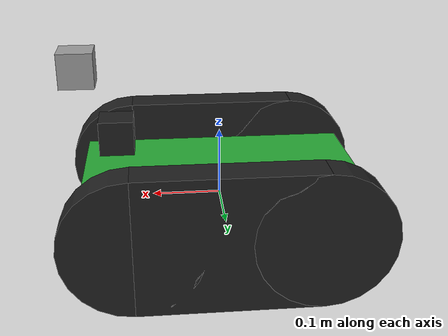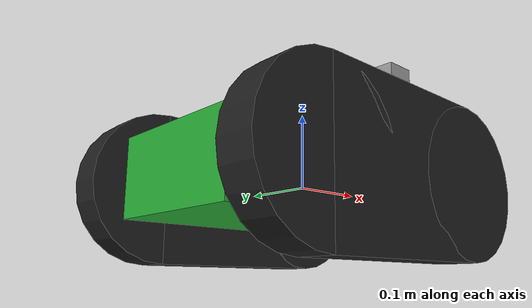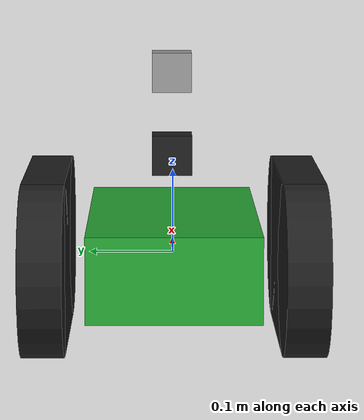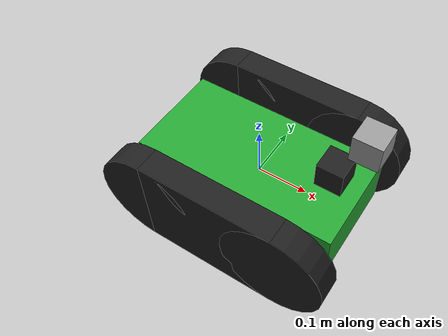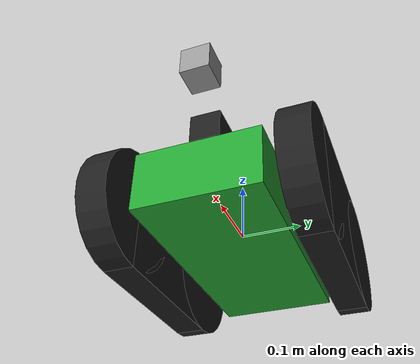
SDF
<?xml version='1.0'?>
<sdf version='1.7'>
    <model name='skidbot 02'>
    <link name='robot_footprint'>
      <inertial>
        <pose>0.001656 0.000331 0.000331 0 -0 0</pose>
        <mass>15.1</mass>
        <inertia>
          <ixx>0.100499</ixx>
          <ixy>-0.00124172</ixy>
          <ixz>-0.00124187</ixz>
          <iyy>0.106459</iyy>
          <iyz>-0.000248344</iyz>
          <izz>0.106459</izz>
        </inertia>
      </inertial>
      <collision name='robot_footprint_fixed_joint_lump__collision_collision'>
        <pose>0 0 0 0 -0 0</pose>
        <geometry>
          <box>
            <size>0.4 0.2 0.1</size>
          </box>
        </geometry>
      </collision>
      <collision name='robot_footprint_fixed_joint_lump__camera_colision_collision_1'>
        <pose>0.2 0 0 0 -0 0</pose>
        <geometry>
          <box>
            <size>0.05 0.05 0.05</size>
          </box>
        </geometry>
      </collision>
      <collision name='robot_footprint_fixed_joint_lump__hokuyo_colision_collision_2'>
        <pose>0.15 0 0.1 0 -0 0</pose>
        <geometry>
          <box>
            <size>0.1 0.1 0.1</size>
          </box>
        </geometry>
      </collision>
      <visual name='robot_footprint_fixed_joint_lump__chassis_visual_visual'>
        <pose>0 0 0 0 -0 0</pose>
        <geometry>
          <box>
            <size>0.4 0.2 0.1</size>
          </box>
        </geometry>
        <material>
          <script>
            <name>Gazebo/Green</name>
            <uri>file://media/materials/scripts/gazebo.material</uri>
          </script>
        </material>
      </visual>
      <visual name='robot_footprint_fixed_joint_lump__camera_visual_visual_1'>

      <!--  this is camera lol @khengyun-->

        <pose>0.2 0 0.2 0 -0 0</pose>
        <geometry>
          <box>
            <size>0.05 0.05 0.05</size>
          </box>
        </geometry>
        <material>
          <script>
            <name>Gazebo/Gray</name>
            <uri>file://media/materials/scripts/gazebo.material</uri>
          </script>
        </material>
      </visual>
      <visual name='robot_footprint_fixed_joint_lump__hokuyo_visual_visual_2'>
        <pose>0.15 0 0.1 0 -0 0</pose>
        <geometry>
          <box>
            <size>0.05 0.05 0.05</size>
          </box>
        </geometry>
        <material>
          <script>
            <name>Gazebo/Black</name>
            <uri>file://media/materials/scripts/gazebo.material</uri>
          </script>
        </material>
      </visual>
      <visual name='robot_footprint_fixed_joint_lump__left_track_visual_visual_3'>
        <pose>0 0.15 0 1.5708 -0 1.5708</pose>
        <geometry>
          <box>
            <size>0.05 0.2 0.26</size>
          </box>
        </geometry>
        <material>
          <script>
            <name>Gazebo/Black</name>
            <uri>file://media/materials/scripts/gazebo.material</uri>
          </script>
        </material>
      </visual>
      <visual name='robot_footprint_fixed_joint_lump__left_track_visual_1_visual_4'>
        <pose>0.13 0.15 0 1.5708 -0 0</pose>
        <geometry>
          <cylinder>
            <length>0.05</length>
            <radius>0.1</radius>
          </cylinder>
        </geometry>
        <material>
          <script>
            <name>Gazebo/Black</name>
            <uri>file://media/materials/scripts/gazebo.material</uri>
          </script>
        </material>
      </visual>
      <visual name='robot_footprint_fixed_joint_lump__left_track_visual_2_visual_5'>
        <pose>-0.13 0.15 0 1.5708 -0 0</pose>
        <geometry>
          <cylinder>
            <length>0.05</length>
            <radius>0.1</radius>
          </cylinder>
        </geometry>
        <material>
          <script>
            <name>Gazebo/Black</name>
            <uri>file://media/materials/scripts/gazebo.material</uri>
          </script>
        </material>
      </visual>
      <visual name='robot_footprint_fixed_joint_lump__right_track_visual_visual_6'>
        <pose>0 -0.15 0 1.5708 -0 1.5708</pose>
        <geometry>
          <box>
            <size>0.05 0.2 0.26</size>
          </box>
        </geometry>
        <material>
          <script>
            <name>Gazebo/Black</name>
            <uri>file://media/materials/scripts/gazebo.material</uri>
          </script>
        </material>
      </visual>
      <visual name='robot_footprint_fixed_joint_lump__right_track_visual_1_visual_7'>
        <pose>0.13 -0.15 0 1.5708 -0 0</pose>
        <geometry>
          <cylinder>
            <length>0.05</length>
            <radius>0.1</radius>
          </cylinder>
        </geometry>
        <material>
          <script>
            <name>Gazebo/Black</name>
            <uri>file://media/materials/scripts/gazebo.material</uri>
          </script>
        </material>
      </visual>
      <visual name='robot_footprint_fixed_joint_lump__right_track_visual_2_visual_8'>
        <pose>-0.13 -0.15 0 1.5708 -0 0</pose>
        <geometry>
          <cylinder>
            <length>0.05</length>
            <radius>0.1</radius>
          </cylinder>
        </geometry>
        <material>
          <script>
            <name>Gazebo/Black</name>
            <uri>file://media/materials/scripts/gazebo.material</uri>
          </script>
        </material>
      </visual>
      <sensor name='camera_sensor' type='camera'>
        <update_rate>30</update_rate>
        <always_on>1</always_on>
        <camera name='camera'>
          <horizontal_fov>1.39626</horizontal_fov>
          <image>
            <width>1024</width>
            <height>600</height>
            <format>R8G8B8</format>
          </image>
          <clip>
            <near>0.02</near>
            <far>300</far>
          </clip>
          <distortion>
            <k1>0</k1>
            <k2>0</k2>
            <k3>0</k3>
            <p1>0</p1>
            <p2>0</p2>
            <center>0.5 0.5</center>
          </distortion>
        </camera>
        <plugin name='camera_controller' filename='libgazebo_ros_camera.so'>
          <ros>
            <namespace>/skidbot</namespace>
            <argument>camera/image_raw:=/skidbot/camera/image</argument>
            <argument>camera/camera_info:=/skidbot/camera/image/camera_info</argument>
          </ros>
          <camera_name>camera_sensor</camera_name>
          <frame_name>robot_footprint</frame_name>
          <hack_baseline>0.07</hack_baseline>
        </plugin>
        <!--  camera xyz -->
        <pose>0.2 0 0.25 0 -0 0</pose>
      </sensor>
      <sensor name='head_hokuyo_sensor' type='ray'>
        <visualize>0</visualize>
        <update_rate>40</update_rate>
        <ray>
          <scan>
            <horizontal>
              <samples>720</samples>
              <resolution>1</resolution>
              <min_angle>-1.5708</min_angle>
              <max_angle>1.5708</max_angle>
            </horizontal>
          </scan>
          <range>
            <min>0.1</min>
            <max>30</max>
            <resolution>0.01</resolution>
          </range>
          <noise>
            <type>gaussian</type>
            <mean>0</mean>
            <stddev>0.01</stddev>
          </noise>
        </ray>
        <update_rate>30</update_rate>
        <plugin name='gazebo_ros_head_hokuyo_controller' filename='libgazebo_ros_ray_sensor.so'>
          <ros>
            <namespace>/skidbot</namespace>
            <argument>~/out:=scan</argument>
          </ros>
          <output_type>sensor_msgs/LaserScan</output_type>
        </plugin>
        <pose>0.15 0 0.1 0 -0 0</pose>
      </sensor>
    </link>
    <joint name='back_left_wheel_joint' type='revolute'>
      <pose relative_to='robot_footprint'>-0.13 0.15 0 0 -0 0</pose>
      <parent>robot_footprint</parent>
      <child>back_left_wheel</child>
      <axis>
        <xyz>0 1 0</xyz>
        <limit>
          <effort>10000</effort>
          <velocity>1000</velocity>
          <lower>-1e+16</lower>
          <upper>1e+16</upper>
        </limit>
        <dynamics>
          <damping>1</damping>
          <friction>1</friction>
          <spring_reference>0</spring_reference>
          <spring_stiffness>0</spring_stiffness>
        </dynamics>
      </axis>
    </joint>
    <link name='back_left_wheel'>
      <pose relative_to='back_left_wheel_joint'>0 0 0 0 -0 0</pose>
      <inertial>
        <pose>0 0 0 0 1.5707 1.5707</pose>
        <mass>8</mass>
        <inertia>
          <ixx>0.1</ixx>
          <ixy>0</ixy>
          <ixz>0</ixz>
          <iyy>0.1</iyy>
          <iyz>0</iyz>
          <izz>0.1</izz>
        </inertia>
      </inertial>
      <collision name='back_left_wheel_collision'>
        <pose>0 0 0 -1.5707 1.5708 0</pose>
        <geometry>
          <cylinder>
            <length>0.05</length>
            <radius>0.1</radius>
          </cylinder>
        </geometry>
      </collision>
    </link>
    <joint name='back_right_wheel_joint' type='revolute'>
      <pose relative_to='robot_footprint'>-0.13 -0.15 0 0 -0 0</pose>
      <parent>robot_footprint</parent>
      <child>back_right_wheel</child>
      <axis>
        <xyz>0 1 0</xyz>
        <limit>
          <effort>10000</effort>
          <velocity>1000</velocity>
          <lower>-1e+16</lower>
          <upper>1e+16</upper>
        </limit>
        <dynamics>
          <damping>1</damping>
          <friction>1</friction>
          <spring_reference>0</spring_reference>
          <spring_stiffness>0</spring_stiffness>
        </dynamics>
      </axis>
    </joint>
    <link name='back_right_wheel'>
      <pose relative_to='back_right_wheel_joint'>0 0 0 0 -0 0</pose>
      <inertial>
        <pose>0 0 0 0 1.5707 1.5707</pose>
        <mass>8</mass>
        <inertia>
          <ixx>0.1</ixx>
          <ixy>0</ixy>
          <ixz>0</ixz>
          <iyy>0.1</iyy>
          <iyz>0</iyz>
          <izz>0.1</izz>
        </inertia>
      </inertial>
      <collision name='back_right_wheel_collision'>
        <pose>0 0 0 -1.5707 1.5708 0</pose>
        <geometry>
          <cylinder>
            <length>0.05</length>
            <radius>0.1</radius>
          </cylinder>
        </geometry>
      </collision>
    </link>
    <joint name='front_left_wheel_joint' type='revolute'>
      <pose relative_to='robot_footprint'>0.13 0.15 0 0 -0 0</pose>
      <parent>robot_footprint</parent>
      <child>front_left_wheel</child>
      <axis>
        <xyz>0 1 0</xyz>
        <limit>
          <effort>10000</effort>
          <velocity>1000</velocity>
          <lower>-1e+16</lower>
          <upper>1e+16</upper>
        </limit>
        <dynamics>
          <damping>1</damping>
          <friction>1</friction>
          <spring_reference>0</spring_reference>
          <spring_stiffness>0</spring_stiffness>
        </dynamics>
      </axis>
    </joint>
    <link name='front_left_wheel'>
      <pose relative_to='front_left_wheel_joint'>0 0 0 0 -0 0</pose>
      <inertial>
        <pose>0 0 0 0 1.5707 1.5707</pose>
        <mass>8</mass>
        <inertia>
          <ixx>0.1</ixx>
          <ixy>0</ixy>
          <ixz>0</ixz>
          <iyy>0.1</iyy>
          <iyz>0</iyz>
          <izz>0.1</izz>
        </inertia>
      </inertial>
      <collision name='front_left_wheel_collision'>
        <pose>0 0 0 -1.5707 1.5708 0</pose>
        <geometry>
          <cylinder>
            <length>0.05</length>
            <radius>0.1</radius>
          </cylinder>
        </geometry>
      </collision>
    </link>
    <joint name='front_right_wheel_joint' type='revolute'>
      <pose relative_to='robot_footprint'>0.13 -0.15 0 0 -0 0</pose>
      <parent>robot_footprint</parent>
      <child>front_right_wheel</child>
      <axis>
        <xyz>0 1 0</xyz>
        <limit>
          <effort>10000</effort>
          <velocity>1000</velocity>
          <lower>-1e+16</lower>
          <upper>1e+16</upper>
        </limit>
        <dynamics>
          <damping>1</damping>
          <friction>1</friction>
          <spring_reference>0</spring_reference>
          <spring_stiffness>0</spring_stiffness>
        </dynamics>
      </axis>
    </joint>
    <link name='front_right_wheel'>
      <pose relative_to='front_right_wheel_joint'>0 0 0 0 -0 0</pose>
      <inertial>
        <pose>0 0 0 0 1.5707 1.5707</pose>
        <mass>8</mass>
        <inertia>
          <ixx>0.1</ixx>
          <ixy>0</ixy>
          <ixz>0</ixz>
          <iyy>0.1</iyy>
          <iyz>0</iyz>
          <izz>0.1</izz>
        </inertia>
      </inertial>
      <collision name='front_right_wheel_collision'>
        <pose>0 0 0 -1.5707 1.5708 0</pose>
        <geometry>
          <cylinder>
            <length>0.05</length>
            <radius>0.1</radius>
          </cylinder>
        </geometry>
      </collision>
    </link>
    <static>0</static>
    <plugin name='skid_steer_drive_controller' filename='libgazebo_ros_diff_drive.so'>
      <ros>
        <namespace>/skidbot</namespace>
        <argument>/cmd_vel:=cmd_vel</argument>
        <argument>/odom:=odom</argument>
      </ros>
      <update_rate>100.0</update_rate>
      <num_wheel_pairs>2</num_wheel_pairs>
      <odometry_frame>odom</odometry_frame>
      <left_joint>front_left_wheel_joint</left_joint>
      <left_joint>back_left_wheel_joint</left_joint>
      <wheel_separation>0.4</wheel_separation>
      <wheel_diameter>0.2</wheel_diameter>
      <right_joint>front_right_wheel_joint</right_joint>
      <right_joint>back_right_wheel_joint</right_joint>
      <wheel_separation>0.4</wheel_separation>
      <wheel_diameter>0.2</wheel_diameter>
      <robot_base_frame>robot_footprint</robot_base_frame>
      <max_wheel_torque>15</max_wheel_torque>
      <publish_odom>1</publish_odom>
      <publish_odom_tf>1</publish_odom_tf>
      <publish_wheel_tf>1</publish_wheel_tf>
      <odometry_source>world</odometry_source>
    </plugin>
  </model>
</sdf>
